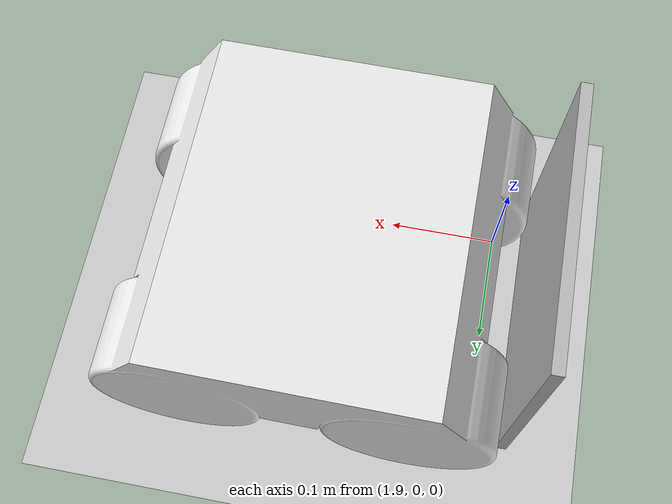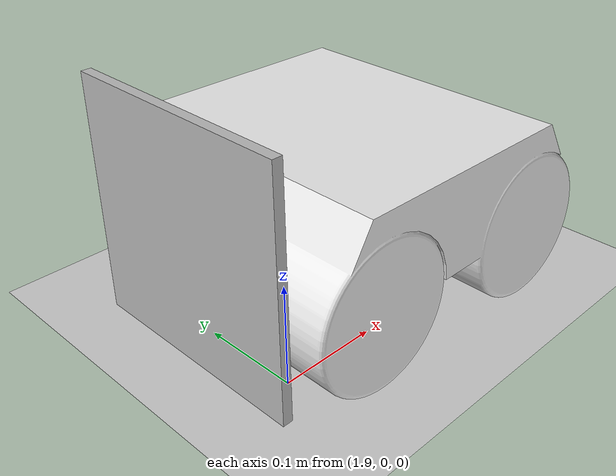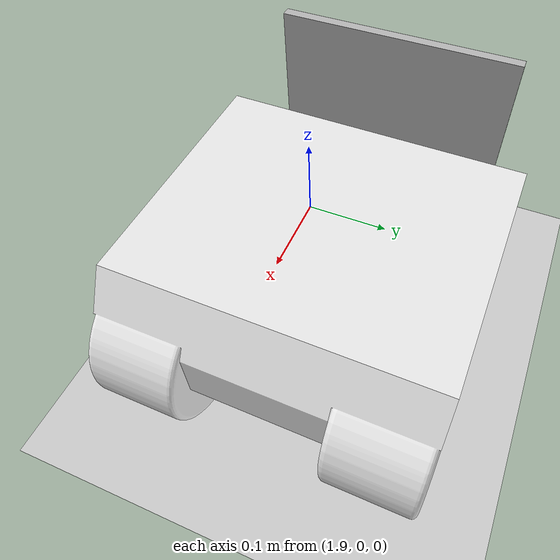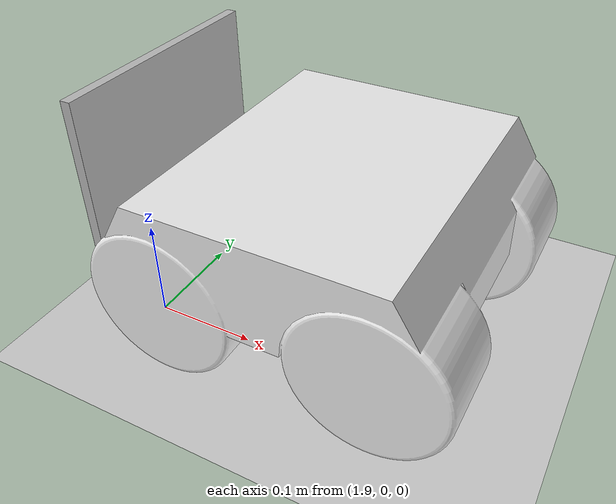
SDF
<sdf version="1.7">
 <world name="default">
  <plugin name="gazebo_ros" filename="libgazebo_ros_state.so"><ros><namespace>/gazebo</namespace></ros></plugin>
  <plugin name="ros_link_attacher_plugin" filename="libgazebo_ros_link_attacher_plugin.so"/>
  <plugin name="gazebo_ros_state" filename="libgazebo_ros_state.so">
   <ros><namespace>/gazebo</namespace></ros>
  </plugin>
  <light name="sun" type="directional">
   <pose>0 0 10 0 -0 0</pose>
   <diffuse>0.8 0.8 0.8 1</diffuse>
   <specular>0.2 0.2 0.2 1</specular>
   <attenuation>
    <range>1000</range>
    <constant>0.9</constant>
    <linear>0.01</linear>
    <quadratic>0.001</quadratic>
   </attenuation>
   <direction>-0.5 0.1 -0.9</direction>
   <spot><inner_angle>0</inner_angle><outer_angle>0</outer_angle><falloff>0</falloff></spot>
  </light>
  <model name="ground_plane">
   <static>1</static>
   <link name="link">
    <collision name="collision">
     <geometry><plane><normal>0 0 1</normal><size>100 100</size></plane></geometry>
     <surface><friction><ode><mu>100</mu><mu2>50</mu2></ode></friction></surface>
    </collision>
    <visual name="visual">
     <cast_shadows>0</cast_shadows>
     <geometry><plane><normal>0 0 1</normal><size>100 100</size></plane></geometry>
     <material>
      <script><uri>file://media/materials/scripts/gazebo.material</uri><name>Gazebo/Grey</name></script>
     </material>
    </visual>
   </link>
  </model>
  <gravity>0 0 -9.8</gravity>
  <magnetic_field>6e-06 2.3e-05 -4.2e-05</magnetic_field>
  <atmosphere type="adiabatic"/>
  <physics type="ode">
   <max_step_size>0.001</max_step_size>
   <real_time_factor>1</real_time_factor>
   <real_time_update_rate>1000</real_time_update_rate>
  </physics>
  <scene><ambient>0.4 0.4 0.4 1</ambient><background>0.7 0.7 0.7 1</background><shadows>1</shadows></scene>
  <audio><device>default</device></audio>
  <spherical_coordinates>
   <surface_model>EARTH_WGS84</surface_model>
   <latitude_deg>0</latitude_deg>
   <longitude_deg>0</longitude_deg>
   <elevation>0</elevation>
   <heading_deg>0</heading_deg>
  </spherical_coordinates>
  <model name="aruco">
   <link name="link">
    <inertial>
     <inertia><ixx>5e-05</ixx><ixy>0</ixy><ixz>0</ixz><iyy>5e-05</iyy><iyz>0</iyz><izz>5e-05</izz></inertia>
     <mass>0.05</mass>
    </inertial>
    <collision name="collision">
     <geometry><box><size>0.24 0.24 0.01</size></box></geometry>
     <surface><friction><ode><mu>100</mu><mu2>50</mu2></ode></friction></surface>
    </collision>
    <visual name="visual">
     <cast_shadows>0</cast_shadows>
     <geometry><box><size>0.24 0.24 0.01</size></box></geometry>
     <material>
      <script>
       <uri>model://aruco/materials/scripts</uri>
       <uri>model://aruco/materials/textures</uri>
       <name>aruco/Image</name>
      </script>
     </material>
    </visual>
   </link>
   <pose>1.86705 0.08392 0.12 2.95078 -1.57077 -2.95079</pose>
   <static>0</static>
  </model>
  <model name="marker_CAR11">
   <link name="base_link">
    <inertial>
     <pose>0 0 -0.072741 0 -0 0</pose>
     <mass>11.8971</mass>
     <inertia>
      <ixx>0.0492436</ixx>
      <ixy>-2.90915e-18</ixy>
      <ixz>-4.33681e-18</ixz>
      <iyy>0.0554288</iyy>
      <iyz>-3.21121e-18</iyz>
      <izz>0.0776736</izz>
     </inertia>
    </inertial>
    <visual name="base_link_visual">
     <geometry><mesh><scale>1 1 1</scale><uri>model://marker_CAR11/meshes/base_link.STL</uri></mesh></geometry>
     <material>
      <script><name>Gazebo/White</name><uri>file://media/materials/scripts/gazebo.material</uri></script>
      <shader type="pixel"/>
     </material>
    </visual>
    <collision name="base_link_collision">
     <geometry><mesh><uri>model://marker_CAR11/meshes/base_link.STL</uri><scale>1 1 1</scale></mesh></geometry>
     <surface>
      <friction>
       <ode><mu>1</mu><mu2>1</mu2><fdir1>0 0 0</fdir1><slip1>0</slip1><slip2>0</slip2></ode>
       <torsional>
        <coefficient>1</coefficient>
        <patch_radius>0</patch_radius>
        <surface_radius>0</surface_radius>
        <use_patch_radius>1</use_patch_radius>
        <ode><slip>0</slip></ode>
       </torsional>
      </friction>
      <bounce><restitution_coefficient>0</restitution_coefficient><threshold>1e+06</threshold></bounce>
      <contact>
       <collide_without_contact>0</collide_without_contact>
       <collide_without_contact_bitmask>1</collide_without_contact_bitmask>
       <collide_bitmask>1</collide_bitmask>
       <ode>
        <soft_cfm>0</soft_cfm>
        <soft_erp>0.2</soft_erp>
        <kp>1e+13</kp>
        <kd>1</kd>
        <max_vel>0.01</max_vel>
        <min_depth>0</min_depth>
       </ode>
       <bullet>
        <split_impulse>1</split_impulse>
        <split_impulse_penetration_threshold>-0.01</split_impulse_penetration_threshold>
        <soft_cfm>0</soft_cfm>
        <soft_erp>0.2</soft_erp>
        <kp>1e+13</kp>
        <kd>1</kd>
       </bullet>
      </contact>
     </surface>
    </collision>
   </link>
   <static>0</static>
   <pose>2.05436 0.084314 0.175007 5.3e-05 4.2e-05 -0.006706</pose>
  </model>
 </world>
</sdf>
